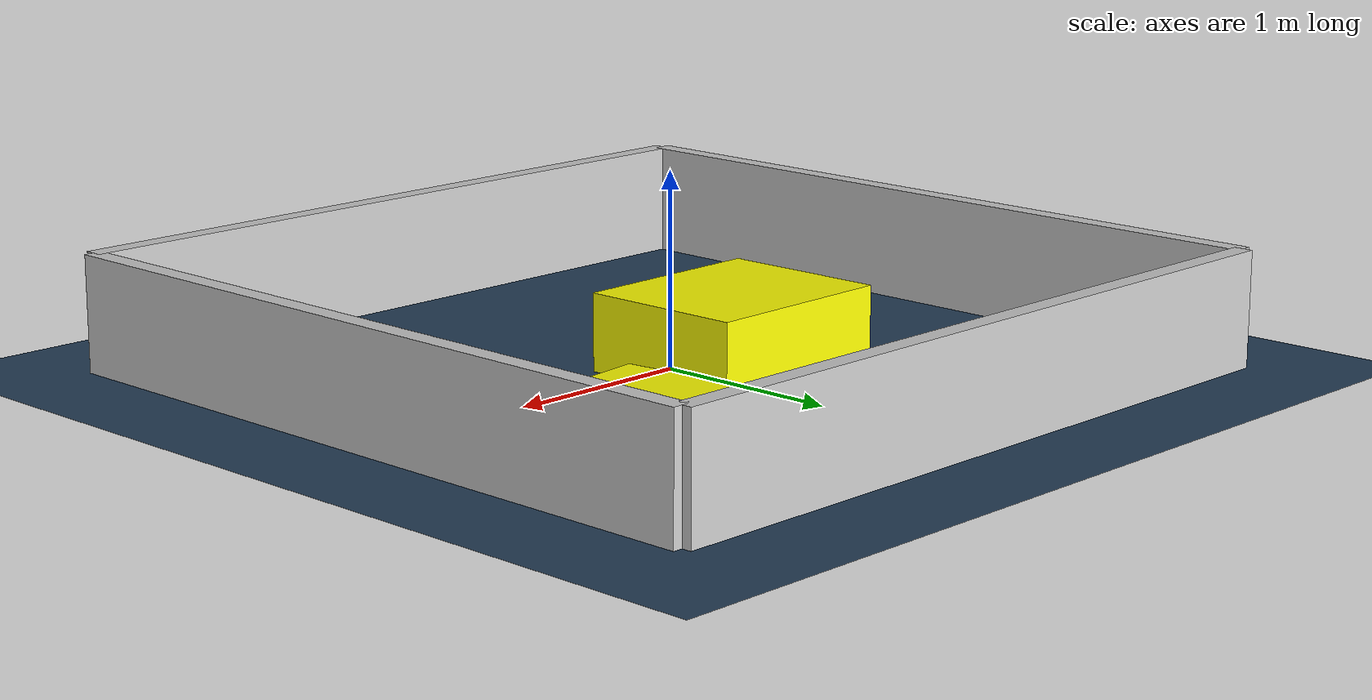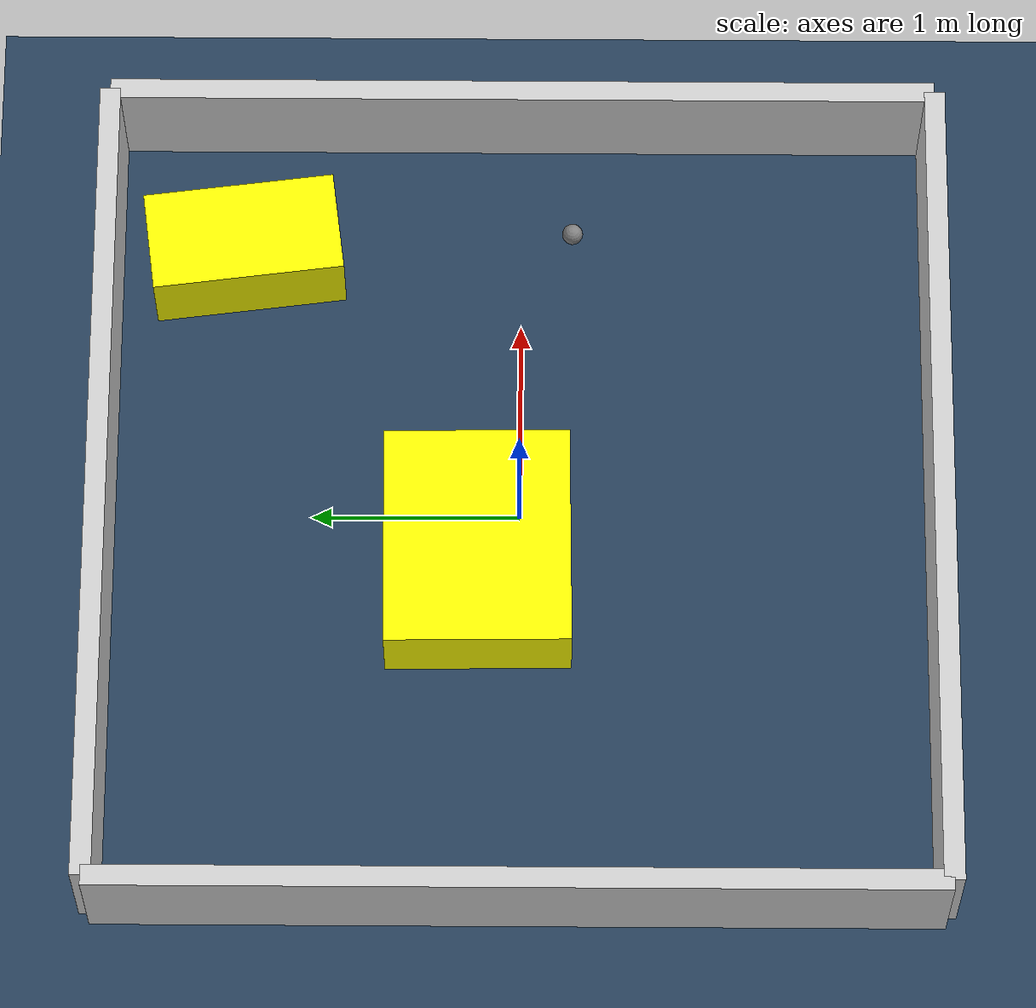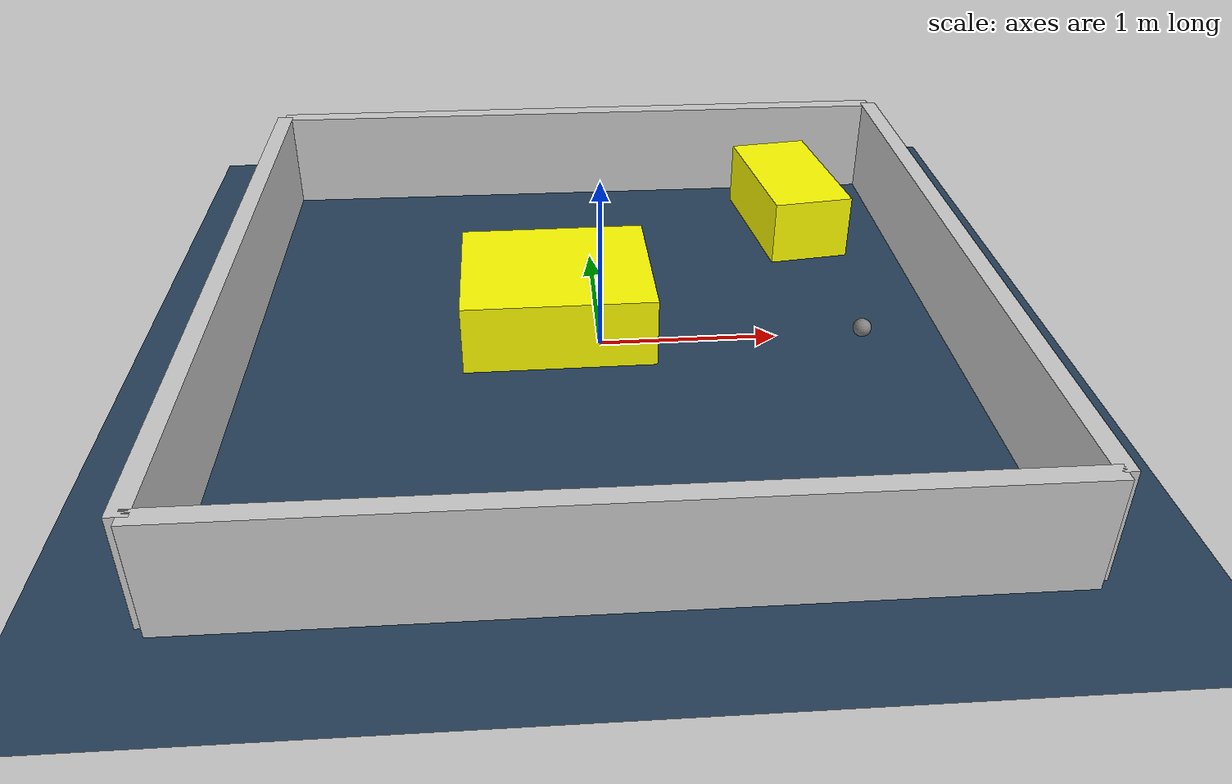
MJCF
<?xml version="1.0" ?>
<mujoco model="generated_environment">
  <option timestep="0.01" integrator="RK4" cone="elliptic"/>
  <default>
    <geom density="1"/>
  </default>
  <asset>
    <texture builtin="gradient" height="3072" rgb1="0.3 0.5 0.7" rgb2="0 0 0" type="skybox" width="512"/>
    <texture builtin="checker" height="300" mark="edge" markrgb="0.8 0.8 0.8" name="groundplane" rgb1="0.2 0.3 0.4" rgb2="0.1 0.2 0.3" type="2d" width="300"/>
    <material name="groundplane" reflectance="0.2" texrepeat="5 5" texture="groundplane" texuniform="true"/>
    <material name="robot" rgba="0.0 1.0 0.0 1"/>
  </asset>
  <worldbody>
    <light dir="0 0 -1" directional="true" pos="0 0 1.5"/>
    <geom condim="4" friction="1.0 0.005 0.001" material="groundplane" name="floor" size="0 0 0.05" type="plane"/>
    <body name="walls">
      <geom name="wall_1" condim="4" pos="-2.0 0.0 0.3" rgba="0.800000011920929 0.800000011920929 0.800000011920929 1.0" size="0.05 2.0 0.3" type="box"/>
      <geom name="wall_2" condim="4" pos="2.0 0.0 0.3" rgba="0.800000011920929 0.800000011920929 0.800000011920929 1.0" size="0.05 2.0 0.3" type="box"/>
      <geom name="wall_3" condim="4" pos="0.0 -2.0 0.3" rgba="0.800000011920929 0.800000011920929 0.800000011920929 1.0" size="2.0 0.05 0.3" type="box"/>
      <geom name="wall_4" condim="4" pos="0.0 2.0 0.3" rgba="0.800000011920929 0.800000011920929 0.800000011920929 1.0" size="2.0 0.05 0.3" type="box"/>
    </body>
    <body name="robot">
      <joint name="joint_x" type="slide" pos="0 0 0" axis="1 0 0"/>
      <joint name="joint_y" type="slide" pos="0 0 0" axis="0 1 0"/>
      <geom name="robot" type="sphere" pos="1.4171179301816674 -0.24852240514520618 0.2" size="0.05" mass="5." friction="1.0 0.005 0.0001" condim="4"/>
      <site name="sensor_ball"/>
    </body>
    <body name="obstacle_1_movable">
      <geom name="obstacle_1_movable" condim="4" pos="1.3350658035164158 1.346960275163222 0.2" euler="0 0 277.3369338886111" friction="1.0 0.005 0.001" rgba="1 1 0 1" size="0.4628455202430812 0.2463520657873926 0.2" type="box" mass="0.1"/>
      <joint type="free"/>
    </body>
    <body name="obstacle_2_movable">
      <geom name="obstacle_2_movable" condim="4" pos="-0.2373756017314752 0.20086659031701504 0.2" euler="0 0 0.6890082640599537" friction="1.0 0.005 0.001" rgba="1 1 0 1" size="0.5322228606559296 0.44408673440103286 0.2" type="box" mass="0.1"/>
      <joint type="free"/>
    </body>
  </worldbody>
  <actuator>
    <motor name="actuator_x" joint="joint_x" gear="1" ctrlrange="-1 1"/>
    <motor name="actuator_y" joint="joint_y" gear="1" ctrlrange="-1 1"/>
  </actuator>
</mujoco>
